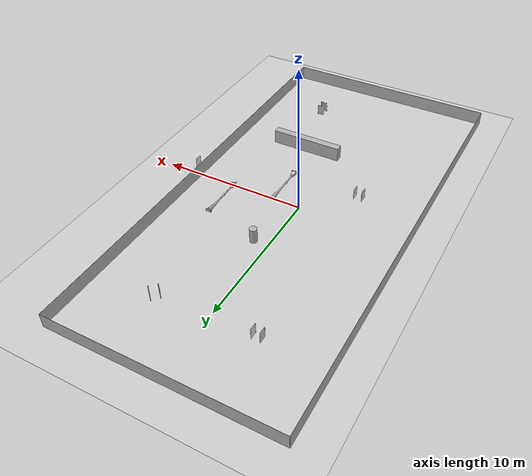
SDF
<sdf version="1.10">
 <world name="default">
  <physics type="ode">
   <max_step_size>0.0040000000000000001</max_step_size>
   <real_time_factor>1</real_time_factor>
   <real_time_update_rate>250</real_time_update_rate>
  </physics>
  <plugin name="gz::sim::systems::Physics" filename="gz-sim-physics-system"/>
  <plugin name="gz::sim::systems::UserCommands" filename="gz-sim-user-commands-system"/>
  <plugin name="gz::sim::systems::SceneBroadcaster" filename="gz-sim-scene-broadcaster-system"/>
  <plugin name="gz::sim::systems::Contact" filename="gz-sim-contact-system"/>
  <plugin name="gz::sim::systems::Imu" filename="gz-sim-imu-system"/>
  <plugin name="gz::sim::systems::Magnetometer" filename="gz-sim-magnetometer-system"/>
  <plugin name="gz::sim::systems::Altimeter" filename="gz-sim-altimeter-system"/>
  <plugin name="gz::sim::systems::NavSat" filename="gz-sim-navsat-system"/>
  <plugin name="gz::sim::systems::Sensors" filename="gz-sim-sensors-system">
   <render_engine>ogre2</render_engine>
  </plugin>
  <gravity>0 0 -9.8000000000000007</gravity>
  <magnetic_field>6.0000000000000002e-06 2.3e-05 -4.1999999999999998e-05</magnetic_field>
  <atmosphere type="adiabatic"/>
  <spherical_coordinates>
   <surface_model>EARTH_WGS84</surface_model>
   <latitude_deg>39.79480109851339</latitude_deg>
   <longitude_deg>-84.08631702793322</longitude_deg>
   <elevation>265.2</elevation>
   <heading_deg>0</heading_deg>
  </spherical_coordinates>
  <scene>
   <grid>true</grid>
   <ambient>0.400000006 0.400000006 0.400000006 1</ambient>
   <background>0.699999988 0.699999988 0.699999988 1</background>
   <shadows>false</shadows>
  </scene>
  <model name="ground_plane">
   <static>true</static>
   <link name="link">
    <collision name="collision">
     <geometry><plane><normal>0 0 1</normal><size>1 1</size></plane></geometry>
    </collision>
    <visual name="visual">
     <geometry><plane><normal>0 0 1</normal><size>100 100</size></plane></geometry>
     <material>
      <ambient>0.800000012 0.800000012 0.800000012 1</ambient>
      <diffuse>0.800000012 0.800000012 0.800000012 1</diffuse>
      <specular>0.800000012 0.800000012 0.800000012 1</specular>
     </material>
    </visual>
    <inertial>
     <mass>1</mass>
     <inertia><ixx>1</ixx><ixy>0</ixy><ixz>0</ixz><iyy>1</iyy><iyz>0</iyz><izz>1</izz></inertia>
    </inertial>
   </link>
  </model>
  <model name="street_1">
   <static>true</static>
   <link name="main">
    <collision name="collision">
     <pose>5 3 0 1.57079632679 0 0</pose>
     <geometry><mesh><scale>1 1 1</scale><uri>models/street.glb</uri></mesh></geometry>
    </collision>
    <visual name="objects">
     <pose>5 3 0 1.57079632679 0 0</pose>
     <geometry><mesh><scale>1 1 1</scale><uri>models/street.glb</uri></mesh></geometry>
    </visual>
   </link>
  </model>
  <model name="street_2">
   <static>true</static>
   <link name="main">
    <collision name="collision">
     <pose>2 0 0 1.57079632679 0 0</pose>
     <geometry><mesh><scale>1 1 1</scale><uri>models/street.glb</uri></mesh></geometry>
    </collision>
    <visual name="objects">
     <pose>2 0 0 1.57079632679 0 0</pose>
     <geometry><mesh><scale>1 1 1</scale><uri>models/street.glb</uri></mesh></geometry>
    </visual>
   </link>
  </model>
  <model name="wall_1">
   <pose>-7.5 0 .5 0 0 -1.57</pose>
   <static>true</static>
   <link name="link">
    <collision name="collision"><geometry><box><size>30 .01 1</size></box></geometry></collision>
    <visual name="visual">
     <geometry><box><size>30 .01 1</size></box></geometry>
     <material>
      <ambient>0.7 0.7 0.7 1</ambient>
      <diffuse>0.7 0.7 0.7 1</diffuse>
      <specular>0.7 0.7 0.7 1</specular>
     </material>
    </visual>
    <inertial>
     <mass>1</mass>
     <inertia><ixx>1</ixx><ixy>0</ixy><ixz>0</ixz><iyy>1</iyy><iyz>0</iyz><izz>1</izz></inertia>
    </inertial>
   </link>
  </model>
  <model name="wall_2">
   <pose>7.5 0 .5 0 0 -1.57</pose>
   <static>true</static>
   <link name="link">
    <collision name="collision"><geometry><box><size>30 .01 1</size></box></geometry></collision>
    <visual name="visual">
     <geometry><box><size>30 .01 1</size></box></geometry>
     <material>
      <ambient>0.7 0.7 0.7 1</ambient>
      <diffuse>0.7 0.7 0.7 1</diffuse>
      <specular>0.7 0.7 0.7 1</specular>
     </material>
    </visual>
    <inertial>
     <mass>1</mass>
     <inertia><ixx>1</ixx><ixy>0</ixy><ixz>0</ixz><iyy>1</iyy><iyz>0</iyz><izz>1</izz></inertia>
    </inertial>
   </link>
  </model>
  <model name="wall_3">
   <pose>0 15 .5 0 0 0</pose>
   <static>true</static>
   <link name="link">
    <collision name="collision"><geometry><box><size>15 .01 1</size></box></geometry></collision>
    <visual name="visual">
     <geometry><box><size>15 .01 1</size></box></geometry>
     <material>
      <ambient>0.7 0.7 0.7 1</ambient>
      <diffuse>0.7 0.7 0.7 1</diffuse>
      <specular>0.7 0.7 0.7 1</specular>
     </material>
    </visual>
    <inertial>
     <mass>1</mass>
     <inertia><ixx>1</ixx><ixy>0</ixy><ixz>0</ixz><iyy>1</iyy><iyz>0</iyz><izz>1</izz></inertia>
    </inertial>
   </link>
  </model>
  <model name="wall_4">
   <pose>0 -15 .5 0 0 0</pose>
   <static>true</static>
   <link name="link">
    <collision name="collision"><geometry><box><size>15 .01 1</size></box></geometry></collision>
    <visual name="visual">
     <geometry><box><size>15 .01 1</size></box></geometry>
     <material>
      <ambient>0.7 0.7 0.7 1</ambient>
      <diffuse>0.7 0.7 0.7 1</diffuse>
      <specular>0.7 0.7 0.7 1</specular>
     </material>
    </visual>
    <inertial>
     <mass>1</mass>
     <inertia><ixx>1</ixx><ixy>0</ixy><ixz>0</ixz><iyy>1</iyy><iyz>0</iyz><izz>1</izz></inertia>
    </inertial>
   </link>
  </model>
  <model name="cube_2">
   <pose>2.5 -6 .5 0 0 0</pose>
   <static>true</static>
   <link name="link">
    <collision name="collision"><geometry><box><size>5 .5 1</size></box></geometry></collision>
    <visual name="visual">
     <geometry><box><size>5 .5 1</size></box></geometry>
     <material>
      <ambient>0.7 0.7 0.7 1</ambient>
      <diffuse>0.7 0.7 0.7 1</diffuse>
      <specular>0.7 0.7 0.7 1</specular>
     </material>
    </visual>
    <inertial>
     <mass>1</mass>
     <inertia><ixx>1</ixx><ixy>0</ixy><ixz>0</ixz><iyy>1</iyy><iyz>0</iyz><izz>1</izz></inertia>
    </inertial>
   </link>
  </model>
  <model name="cylinder_2">
   <pose>1 4 .5 0 0 0</pose>
   <static>true</static>
   <link name="link">
    <collision name="collision">
     <geometry><cylinder><length>1</length><radius>.25</radius></cylinder></geometry>
    </collision>
    <visual name="visual">
     <geometry><cylinder><length>1</length><radius>.25</radius></cylinder></geometry>
     <material>
      <ambient>0.7 0.7 0.7 1</ambient>
      <diffuse>0.7 0.7 0.7 1</diffuse>
      <specular>0.7 0.7 0.7 1</specular>
     </material>
    </visual>
    <inertial>
     <mass>1</mass>
     <inertia><ixx>1</ixx><ixy>0</ixy><ixz>0</ixz><iyy>1</iyy><iyz>0</iyz><izz>1</izz></inertia>
    </inertial>
   </link>
  </model>
  <model name="curtain_2">
   <static>true</static>
   <link name="main">
    <visual name="objects">
     <pose>-3 -2 0 1.57079632679 0 0</pose>
     <geometry><mesh><uri>models/curtain.glb</uri></mesh></geometry>
    </visual>
   </link>
  </model>
  <model name="curtain_test">
   <static>true</static>
   <link name="main">
    <visual name="objects">
     <pose>8.0 0 0 1.57079632679 0 0</pose>
     <geometry><mesh><uri>models/curtain.glb</uri></mesh></geometry>
    </visual>
   </link>
  </model>
  <light name="light_2_1" type="point">
   <pose>-3 -0.5 1 0 0 0</pose>
   <diffuse>1 1 1 1</diffuse>
   <specular>0.3 0.3 0.3 1</specular>
   <attenuation><range>3</range><constant>0</constant><linear>0</linear><quadratic>0</quadratic></attenuation>
   <cast_shadows>false</cast_shadows>
   <intensity>1.0</intensity>
  </light>
  <light name="light_2_2" type="point">
   <pose>-3 -3.5 1 0 0 0</pose>
   <diffuse>1 1 1 1</diffuse>
   <specular>0.3 0.3 0.3 1</specular>
   <attenuation><range>3</range><constant>0</constant><linear>0</linear><quadratic>0</quadratic></attenuation>
   <cast_shadows>false</cast_shadows>
   <intensity>1.0</intensity>
  </light>
  <light name="light_2_3" type="point">
   <pose>-4.5 -2.0 1 0 0 0</pose>
   <diffuse>1 1 1 1</diffuse>
   <specular>0.3 0.3 0.3 1</specular>
   <attenuation><range>3</range><constant>0</constant><linear>0</linear><quadratic>0</quadratic></attenuation>
   <cast_shadows>false</cast_shadows>
   <intensity>1.0</intensity>
  </light>
  <light name="light_2_4" type="point">
   <pose>-1.5 -2 1 0 0 0</pose>
   <diffuse>1 1 1 1</diffuse>
   <specular>0.3 0.3 0.3 1</specular>
   <attenuation><range>3</range><constant>0</constant><linear>0</linear><quadratic>0</quadratic></attenuation>
   <cast_shadows>false</cast_shadows>
   <intensity>1.0</intensity>
  </light>
  <light name="light_3_1" type="point">
   <pose>1.5 -11 1 0 0 0</pose>
   <diffuse>1 1 1 1</diffuse>
   <specular>0.3 0.3 0.3 1</specular>
   <attenuation><range>3</range><constant>0</constant><linear>0</linear><quadratic>0</quadratic></attenuation>
   <cast_shadows>false</cast_shadows>
   <intensity>1.0</intensity>
  </light>
  <light name="light_3_2" type="point">
   <pose>4.5 -11 1 0 0 0</pose>
   <diffuse>1 1 1 1</diffuse>
   <specular>0.3 0.3 0.3 1</specular>
   <attenuation><range>3</range><constant>0</constant><linear>0</linear><quadratic>0</quadratic></attenuation>
   <cast_shadows>false</cast_shadows>
   <intensity>1.0</intensity>
  </light>
  <light name="light_3_3" type="point">
   <pose>3 -9.5 1 0 0 0</pose>
   <diffuse>1 1 1 1</diffuse>
   <specular>0.3 0.3 0.3 1</specular>
   <attenuation><range>3</range><constant>0</constant><linear>0</linear><quadratic>0</quadratic></attenuation>
   <cast_shadows>false</cast_shadows>
   <intensity>1.0</intensity>
  </light>
  <light name="light_3_4" type="point">
   <pose>3 -12.5 1 0 0 0</pose>
   <diffuse>1 1 1 1</diffuse>
   <specular>0.3 0.3 0.3 1</specular>
   <attenuation><range>3</range><constant>0</constant><linear>0</linear><quadratic>0</quadratic></attenuation>
   <cast_shadows>false</cast_shadows>
   <intensity>1.0</intensity>
  </light>
  <light name="light_1_1" type="point">
   <pose>-5.0 -10.0 1 0 0 0</pose>
   <diffuse>1 1 1 1</diffuse>
   <specular>0.3 0.3 0.3 1</specular>
   <attenuation><range>3</range><constant>0</constant><linear>0</linear><quadratic>0</quadratic></attenuation>
   <cast_shadows>false</cast_shadows>
   <intensity>1.0</intensity>
  </light>
  <light name="light_1_2" type="point">
   <pose>-3.0 -10.0 1 0 0 0</pose>
   <diffuse>1 1 1 1</diffuse>
   <specular>0.3 0.3 0.3 1</specular>
   <attenuation><range>3</range><constant>0</constant><linear>0</linear><quadratic>0</quadratic></attenuation>
   <cast_shadows>false</cast_shadows>
   <intensity>1.0</intensity>
  </light>
  <light name="light_1_3" type="point">
   <pose>-5.0 -12.0 1 0 0 0</pose>
   <diffuse>1 1 1 1</diffuse>
   <specular>0.3 0.3 0.3 1</specular>
   <attenuation><range>3</range><constant>0</constant><linear>0</linear><quadratic>0</quadratic></attenuation>
   <cast_shadows>false</cast_shadows>
   <intensity>1.0</intensity>
  </light>
  <light name="light_1_4" type="point">
   <pose>-3.0 -12.0 1 0 0 0</pose>
   <diffuse>1 1 1 1</diffuse>
   <specular>0.3 0.3 0.3 1</specular>
   <attenuation><range>3</range><constant>0</constant><linear>0</linear><quadratic>0</quadratic></attenuation>
   <cast_shadows>false</cast_shadows>
   <intensity>1.0</intensity>
  </light>
  <light name="light_4_1" type="point">
   <pose>4.0 10.0 1 0 0 0</pose>
   <diffuse>1 1 1 1</diffuse>
   <specular>0.3 0.3 0.3 1</specular>
   <attenuation><range>3</range><constant>0</constant><linear>0</linear><quadratic>0</quadratic></attenuation>
   <cast_shadows>false</cast_shadows>
   <intensity>1.0</intensity>
  </light>
  <light name="light_4_2" type="point">
   <pose>2.0 10.0 1 0 0 0</pose>
   <diffuse>1 1 1 1</diffuse>
   <specular>0.3 0.3 0.3 1</specular>
   <attenuation><range>3</range><constant>0</constant><linear>0</linear><quadratic>0</quadratic></attenuation>
   <cast_shadows>false</cast_shadows>
   <intensity>1.0</intensity>
  </light>
  <light name="light_4_3" type="point">
   <pose>4.0 12.0 1 0 0 0</pose>
   <diffuse>1 1 1 1</diffuse>
   <specular>0.3 0.3 0.3 1</specular>
   <attenuation><range>3</range><constant>0</constant><linear>0</linear><quadratic>0</quadratic></attenuation>
   <cast_shadows>false</cast_shadows>
   <intensity>1.0</intensity>
  </light>
  <light name="light_4_4" type="point">
   <pose>2.0 12.0 1 0 0 0</pose>
   <diffuse>1 1 1 1</diffuse>
   <specular>0.3 0.3 0.3 1</specular>
   <attenuation><range>3</range><constant>0</constant><linear>0</linear><quadratic>0</quadratic></attenuation>
   <cast_shadows>false</cast_shadows>
   <intensity>1.0</intensity>
  </light>
  <light name="light_5_1" type="point">
   <pose>-3 12.5 1 0 0 0</pose>
   <diffuse>1 1 1 1</diffuse>
   <specular>0.3 0.3 0.3 1</specular>
   <attenuation><range>3</range><constant>0</constant><linear>0</linear><quadratic>0</quadratic></attenuation>
   <cast_shadows>false</cast_shadows>
   <intensity>1.0</intensity>
  </light>
  <light name="light_5_2" type="point">
   <pose>-3 9.5 1 0 0 0</pose>
   <diffuse>1 1 1 1</diffuse>
   <specular>0.3 0.3 0.3 1</specular>
   <attenuation><range>3</range><constant>0</constant><linear>0</linear><quadratic>0</quadratic></attenuation>
   <cast_shadows>false</cast_shadows>
   <intensity>1.0</intensity>
  </light>
  <light name="light_5_3" type="point">
   <pose>-4.5 11 1 0 0 0</pose>
   <diffuse>1 1 1 1</diffuse>
   <specular>0.3 0.3 0.3 1</specular>
   <attenuation><range>3</range><constant>0</constant><linear>0</linear><quadratic>0</quadratic></attenuation>
   <cast_shadows>false</cast_shadows>
   <intensity>1.0</intensity>
  </light>
  <light name="light_5_4" type="point">
   <pose>-1.5 11 1 0 0 0</pose>
   <diffuse>1 1 1 1</diffuse>
   <specular>0.3 0.3 0.3 1</specular>
   <attenuation><range>3</range><constant>0</constant><linear>0</linear><quadratic>0</quadratic></attenuation>
   <cast_shadows>false</cast_shadows>
   <intensity>1.0</intensity>
  </light>
  <model name="curtain_3">
   <static>true</static>
   <link name="main">
    <visual name="objects">
     <pose>3 -11 0 1.57079632679 0 1.57079632679</pose>
     <geometry><mesh><uri>models/curtain.glb</uri></mesh></geometry>
    </visual>
   </link>
  </model>
  <model name="curtain_4">
   <static>true</static>
   <link name="main">
    <visual name="objects">
     <pose>3 11 0 1.57079632679 0 0.78539816339</pose>
     <geometry><mesh><uri>models/curtain.glb</uri></mesh></geometry>
    </visual>
   </link>
  </model>
  <model name="curtain_5">
   <static>true</static>
   <link name="main">
    <visual name="objects">
     <pose>-3 11 0 1.57079632679 0 0</pose>
     <geometry><mesh><uri>models/curtain.glb</uri></mesh></geometry>
    </visual>
   </link>
  </model>
  <light name="sunUTC" type="directional">
   <pose>0 0 500 0 0 0</pose>
   <cast_shadows>false</cast_shadows>
   <intensity>1.0</intensity>
   <direction>0.001 0.625 -0.78000000000000003</direction>
   <diffuse>0.903999984 0.903999984 0.903999984 1</diffuse>
   <specular>0.270999998 0.270999998 0.270999998 1</specular>
   <attenuation><range>2000</range><linear>0</linear><constant>1</constant><quadratic>0</quadratic></attenuation>
   <spot><inner_angle>0</inner_angle><outer_angle>0</outer_angle><falloff>0</falloff></spot>
  </light>
 </world>
</sdf>
